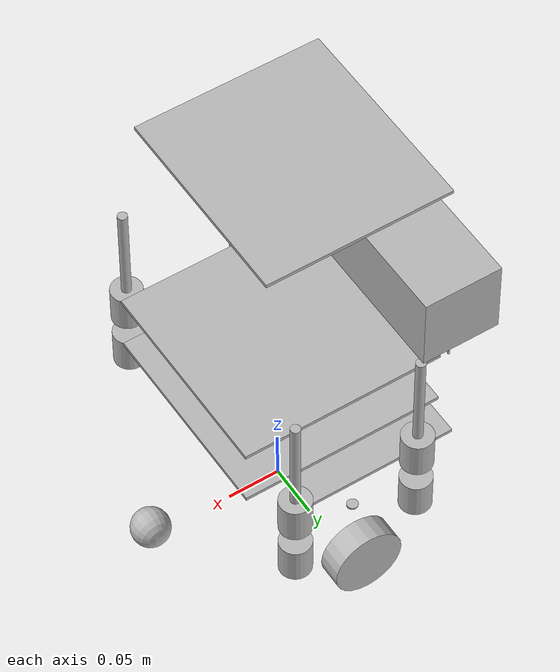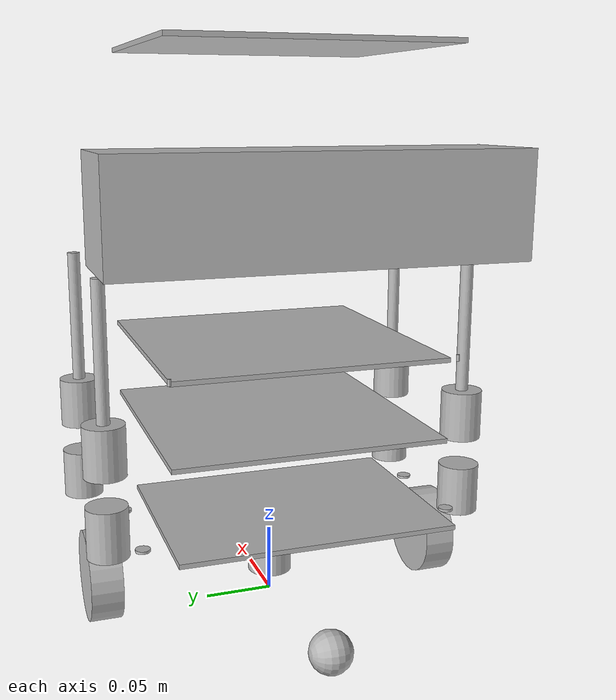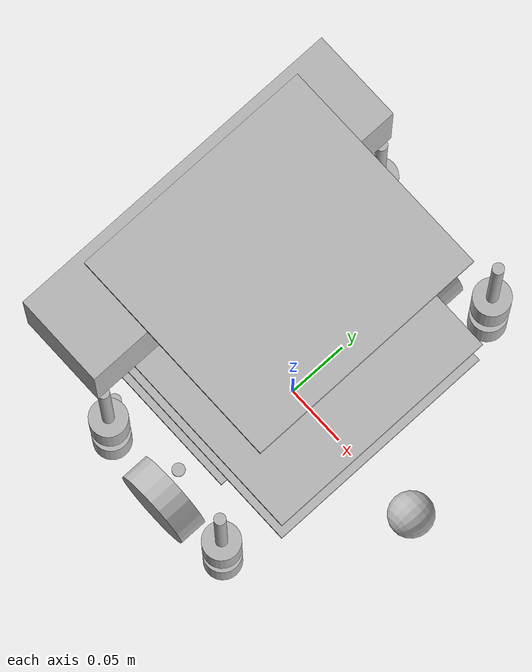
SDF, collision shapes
<sdf version="1.6">
 <model name="turtlebot">
  <link name="rack">
   <inertial>
    <pose>5e-06 -2e-06 0.000124 0 -0 0</pose>
    <inertia>
     <ixx>6.14575e-07</ixx>
     <ixy>0.000124</ixy>
     <ixz>0.000615</ixz>
     <iyy>6.14575e-07</iyy>
     <iyz>1.4e-05</iyz>
     <izz>2.47642e-07</izz>
    </inertia>
    <mass>0.300945</mass>
   </inertial>
   <sensor name="laser" type="ray">
    <pose>-0.065 0 0.092 0 -0 0</pose>
    <ray>
     <scan>
      <horizontal>
       <samples>180</samples>
       <resolution>1</resolution>
       <min_angle>-2.26893</min_angle>
       <max_angle>2.26893</max_angle>
      </horizontal>
      <vertical><samples>1</samples><min_angle>0</min_angle><max_angle>0</max_angle></vertical>
     </scan>
     <range><min>0.08</min><max>10</max><resolution>0.01</resolution></range>
    </ray>
    <update_rate>20</update_rate>
   </sensor>
   <visual name="plate_0_visual">
    <pose>-0.04334 0 0.084757 0 -0 0</pose>
    <geometry><mesh><uri>model://turtlebot/meshes/plate_0_logo.dae</uri></mesh></geometry>
    <material><shader type="pixel"/></material>
   </visual>
   <visual name="plate_1_visual">
    <pose>-0.00266 0 0.141907 0 -0 0</pose>
    <geometry><mesh><uri>model://turtlebot/meshes/plate_1_logo.dae</uri></mesh></geometry>
    <material><shader type="pixel"/></material>
   </visual>
   <visual name="plate_2_visual">
    <pose>-0.00266 0 0.199108 0 -0 0</pose>
    <geometry><mesh><uri>model://turtlebot/meshes/plate_1_logo.dae</uri></mesh></geometry>
    <material><shader type="pixel"/></material>
   </visual>
   <visual name="spacer_0_visual">
    <pose>-0.00254 0.111468 0.079992 0 -0 0</pose>
    <geometry><mesh><uri>model://turtlebot/meshes/68-02403-125_Spacer.dae</uri></mesh></geometry>
    <material><shader type="pixel"/></material>
   </visual>
   <visual name="plate_3_visual">
    <pose>-0.01582 0 0.405457 0 -0 0</pose>
    <geometry><mesh><uri>model://turtlebot/meshes/plate_2_logo.dae</uri></mesh></geometry>
    <material><shader type="pixel"/></material>
   </visual>
   <visual name="spacer_1_visual">
    <pose>-0.00254 -0.111468 0.079992 0 -0 0</pose>
    <geometry><mesh><uri>model://turtlebot/meshes/68-02403-125_Spacer.dae</uri></mesh></geometry>
    <material><shader type="pixel"/></material>
   </visual>
   <visual name="spacer_2_visual">
    <pose>-0.07239 -0.111468 0.079992 0 -0 0</pose>
    <geometry><mesh><uri>model://turtlebot/meshes/68-02403-125_Spacer.dae</uri></mesh></geometry>
    <material><shader type="pixel"/></material>
   </visual>
   <visual name="spacer_3_visual">
    <pose>-0.07239 0.111468 0.079992 0 -0 0</pose>
    <geometry><mesh><uri>model://turtlebot/meshes/68-02403-125_Spacer.dae</uri></mesh></geometry>
    <material><shader type="pixel"/></material>
   </visual>
   <visual name="standoff_2in_0_visual">
    <pose>0.06764 0.13142 0.08798 0 -0 0</pose>
    <geometry>
     <mesh><uri>model://turtlebot/meshes/68-04552-2000-RA_Turtlebot_M-F_Standoff.dae</uri></mesh>
    </geometry>
    <material><shader type="pixel"/></material>
   </visual>
   <visual name="standoff_2in_1_visual">
    <pose>0.06764 -0.13142 0.08798 0 -0 0</pose>
    <geometry>
     <mesh><uri>model://turtlebot/meshes/68-04552-2000-RA_Turtlebot_M-F_Standoff.dae</uri></mesh>
    </geometry>
    <material><shader type="pixel"/></material>
   </visual>
   <visual name="standoff_2in_2_visual">
    <pose>-0.052832 -0.13142 0.08798 0 -0 0</pose>
    <geometry>
     <mesh><uri>model://turtlebot/meshes/68-04552-2000-RA_Turtlebot_M-F_Standoff.dae</uri></mesh>
    </geometry>
    <material><shader type="pixel"/></material>
   </visual>
   <visual name="standoff_2in_3_visual">
    <pose>-0.052832 0.13142 0.08798 0 -0 0</pose>
    <geometry>
     <mesh><uri>model://turtlebot/meshes/68-04552-2000-RA_Turtlebot_M-F_Standoff.dae</uri></mesh>
    </geometry>
    <material><shader type="pixel"/></material>
   </visual>
   <visual name="standoff_2in_4_visual">
    <pose>0.06764 0.13142 0.14513 0 -0 0</pose>
    <geometry>
     <mesh><uri>model://turtlebot/meshes/68-04552-2000-RA_Turtlebot_M-F_Standoff.dae</uri></mesh>
    </geometry>
    <material><shader type="pixel"/></material>
   </visual>
   <visual name="standoff_2in_6_visual">
    <pose>-0.052832 -0.13142 0.14513 0 -0 0</pose>
    <geometry>
     <mesh><uri>model://turtlebot/meshes/68-04552-2000-RA_Turtlebot_M-F_Standoff.dae</uri></mesh>
    </geometry>
    <material><shader type="pixel"/></material>
   </visual>
   <visual name="standoff_2in_5_visual">
    <pose>0.06764 -0.13142 0.14513 0 -0 0</pose>
    <geometry>
     <mesh><uri>model://turtlebot/meshes/68-04552-2000-RA_Turtlebot_M-F_Standoff.dae</uri></mesh>
    </geometry>
    <material><shader type="pixel"/></material>
   </visual>
   <visual name="standoff_2in_7_visual">
    <pose>-0.052832 0.13142 0.14513 0 -0 0</pose>
    <geometry>
     <mesh><uri>model://turtlebot/meshes/68-04552-2000-RA_Turtlebot_M-F_Standoff.dae</uri></mesh>
    </geometry>
    <material><shader type="pixel"/></material>
   </visual>
   <visual name="standoff_8in_0_visual">
    <pose>0.06764 0.13142 0.20228 0 -0 0</pose>
    <geometry>
     <mesh><uri>model://turtlebot/meshes/68-02421-8000-RA_Turtlebot_F-F_Standoff.dae</uri></mesh>
    </geometry>
    <material><shader type="pixel"/></material>
   </visual>
   <visual name="standoff_8in_1_visual">
    <pose>0.06764 -0.13142 0.20228 0 -0 0</pose>
    <geometry>
     <mesh><uri>model://turtlebot/meshes/68-02421-8000-RA_Turtlebot_F-F_Standoff.dae</uri></mesh>
    </geometry>
    <material><shader type="pixel"/></material>
   </visual>
   <visual name="standoff_8in_2_visual">
    <pose>-0.052832 -0.13142 0.20228 0 -0 0</pose>
    <geometry>
     <mesh><uri>model://turtlebot/meshes/68-02421-8000-RA_Turtlebot_F-F_Standoff.dae</uri></mesh>
    </geometry>
    <material><shader type="pixel"/></material>
   </visual>
   <visual name="standoff_8in_3_visual">
    <pose>-0.052832 0.13142 0.20228 0 -0 0</pose>
    <geometry>
     <mesh><uri>model://turtlebot/meshes/68-02421-8000-RA_Turtlebot_F-F_Standoff.dae</uri></mesh>
    </geometry>
    <material><shader type="pixel"/></material>
   </visual>
   <visual name="standoff_kinect_0_visual">
    <pose>-0.105098 0.098 0.202308 0 -0 0</pose>
    <geometry><mesh><uri>model://turtlebot/meshes/68-04556-RA_Kinect_Standoff_Assy.dae</uri></mesh></geometry>
    <material><shader type="pixel"/></material>
   </visual>
   <visual name="standoff_kinect_1_visual">
    <pose>-0.105098 -0.098 0.202308 0 -0 0</pose>
    <geometry><mesh><uri>model://turtlebot/meshes/68-04556-RA_Kinect_Standoff_Assy.dae</uri></mesh></geometry>
    <material><shader type="pixel"/></material>
   </visual>
   <collision name="plate_0_collision">
    <pose>-0.04334 0 0.084757 0 -0 0</pose>
    <geometry><box><size>0.141727 0.192827 0.003299</size></box></geometry>
    <surface>
     <friction>
      <ode><mu>1</mu><mu2>1</mu2><fdir1>0 0 0</fdir1><slip1>0</slip1><slip2>0</slip2></ode>
      <torsional>
       <coefficient>1</coefficient>
       <patch_radius>0</patch_radius>
       <surface_radius>0</surface_radius>
       <use_patch_radius>1</use_patch_radius>
       <ode><slip>0</slip></ode>
      </torsional>
     </friction>
     <bounce><restitution_coefficient>0</restitution_coefficient><threshold>1e+06</threshold></bounce>
     <contact>
      <collide_without_contact>0</collide_without_contact>
      <collide_without_contact_bitmask>1</collide_without_contact_bitmask>
      <collide_bitmask>1</collide_bitmask>
      <ode>
       <soft_cfm>0</soft_cfm>
       <soft_erp>0.2</soft_erp>
       <kp>1e+13</kp>
       <kd>1</kd>
       <max_vel>0.01</max_vel>
       <min_depth>0</min_depth>
      </ode>
      <bullet>
       <split_impulse>1</split_impulse>
       <split_impulse_penetration_threshold>-0.01</split_impulse_penetration_threshold>
       <soft_cfm>0</soft_cfm>
       <soft_erp>0.2</soft_erp>
       <kp>1e+13</kp>
       <kd>1</kd>
      </bullet>
     </contact>
    </surface>
   </collision>
   <collision name="plate_1_collision">
    <pose>-0.00266 0 0.141907 0 -0 0</pose>
    <geometry><box><size>0.191105 0.192834 0.003299</size></box></geometry>
    <surface>
     <friction>
      <ode><mu>1</mu><mu2>1</mu2><fdir1>0 0 0</fdir1><slip1>0</slip1><slip2>0</slip2></ode>
      <torsional>
       <coefficient>1</coefficient>
       <patch_radius>0</patch_radius>
       <surface_radius>0</surface_radius>
       <use_patch_radius>1</use_patch_radius>
       <ode><slip>0</slip></ode>
      </torsional>
     </friction>
     <bounce><restitution_coefficient>0</restitution_coefficient><threshold>1e+06</threshold></bounce>
     <contact>
      <collide_without_contact>0</collide_without_contact>
      <collide_without_contact_bitmask>1</collide_without_contact_bitmask>
      <collide_bitmask>1</collide_bitmask>
      <ode>
       <soft_cfm>0</soft_cfm>
       <soft_erp>0.2</soft_erp>
       <kp>1e+13</kp>
       <kd>1</kd>
       <max_vel>0.01</max_vel>
       <min_depth>0</min_depth>
      </ode>
      <bullet>
       <split_impulse>1</split_impulse>
       <split_impulse_penetration_threshold>-0.01</split_impulse_penetration_threshold>
       <soft_cfm>0</soft_cfm>
       <soft_erp>0.2</soft_erp>
       <kp>1e+13</kp>
       <kd>1</kd>
      </bullet>
     </contact>
    </surface>
   </collision>
   <collision name="plate_2_collision">
    <pose>-0.00266 0 0.199108 0 -0 0</pose>
    <geometry><box><size>0.191105 0.192834 0.003299</size></box></geometry>
    <surface>
     <friction>
      <ode><mu>1</mu><mu2>1</mu2><fdir1>0 0 0</fdir1><slip1>0</slip1><slip2>0</slip2></ode>
      <torsional>
       <coefficient>1</coefficient>
       <patch_radius>0</patch_radius>
       <surface_radius>0</surface_radius>
       <use_patch_radius>1</use_patch_radius>
       <ode><slip>0</slip></ode>
      </torsional>
     </friction>
     <bounce><restitution_coefficient>0</restitution_coefficient><threshold>1e+06</threshold></bounce>
     <contact>
      <collide_without_contact>0</collide_without_contact>
      <collide_without_contact_bitmask>1</collide_without_contact_bitmask>
      <collide_bitmask>1</collide_bitmask>
      <ode>
       <soft_cfm>0</soft_cfm>
       <soft_erp>0.2</soft_erp>
       <kp>1e+13</kp>
       <kd>1</kd>
       <max_vel>0.01</max_vel>
       <min_depth>0</min_depth>
      </ode>
      <bullet>
       <split_impulse>1</split_impulse>
       <split_impulse_penetration_threshold>-0.01</split_impulse_penetration_threshold>
       <soft_cfm>0</soft_cfm>
       <soft_erp>0.2</soft_erp>
       <kp>1e+13</kp>
       <kd>1</kd>
      </bullet>
     </contact>
    </surface>
   </collision>
   <collision name="plate_3_collision">
    <pose>-0.01582 0 0.405457 0 -0 0</pose>
    <geometry><box><size>0.174804 0.192922 0.003299</size></box></geometry>
    <surface>
     <friction>
      <ode><mu>1</mu><mu2>1</mu2><fdir1>0 0 0</fdir1><slip1>0</slip1><slip2>0</slip2></ode>
      <torsional>
       <coefficient>1</coefficient>
       <patch_radius>0</patch_radius>
       <surface_radius>0</surface_radius>
       <use_patch_radius>1</use_patch_radius>
       <ode><slip>0</slip></ode>
      </torsional>
     </friction>
     <bounce><restitution_coefficient>0</restitution_coefficient><threshold>1e+06</threshold></bounce>
     <contact>
      <collide_without_contact>0</collide_without_contact>
      <collide_without_contact_bitmask>1</collide_without_contact_bitmask>
      <collide_bitmask>1</collide_bitmask>
      <ode>
       <soft_cfm>0</soft_cfm>
       <soft_erp>0.2</soft_erp>
       <kp>1e+13</kp>
       <kd>1</kd>
       <max_vel>0.01</max_vel>
       <min_depth>0</min_depth>
      </ode>
      <bullet>
       <split_impulse>1</split_impulse>
       <split_impulse_penetration_threshold>-0.01</split_impulse_penetration_threshold>
       <soft_cfm>0</soft_cfm>
       <soft_erp>0.2</soft_erp>
       <kp>1e+13</kp>
       <kd>1</kd>
      </bullet>
     </contact>
    </surface>
   </collision>
   <collision name="spacer_0_collision">
    <pose>-0.00254 0.111468 0.079992 0 -0 0</pose>
    <geometry><cylinder><radius>0.00511</radius><length>0.0018</length></cylinder></geometry>
    <surface>
     <friction>
      <ode><mu>1</mu><mu2>1</mu2><fdir1>0 0 0</fdir1><slip1>0</slip1><slip2>0</slip2></ode>
      <torsional>
       <coefficient>1</coefficient>
       <patch_radius>0</patch_radius>
       <surface_radius>0</surface_radius>
       <use_patch_radius>1</use_patch_radius>
       <ode><slip>0</slip></ode>
      </torsional>
     </friction>
     <bounce><restitution_coefficient>0</restitution_coefficient><threshold>1e+06</threshold></bounce>
     <contact>
      <collide_without_contact>0</collide_without_contact>
      <collide_without_contact_bitmask>1</collide_without_contact_bitmask>
      <collide_bitmask>1</collide_bitmask>
      <ode>
       <soft_cfm>0</soft_cfm>
       <soft_erp>0.2</soft_erp>
       <kp>1e+13</kp>
       <kd>1</kd>
       <max_vel>0.01</max_vel>
       <min_depth>0</min_depth>
      </ode>
      <bullet>
       <split_impulse>1</split_impulse>
       <split_impulse_penetration_threshold>-0.01</split_impulse_penetration_threshold>
       <soft_cfm>0</soft_cfm>
       <soft_erp>0.2</soft_erp>
       <kp>1e+13</kp>
       <kd>1</kd>
      </bullet>
     </contact>
    </surface>
   </collision>
   <collision name="spacer_1_collision">
    <pose>-0.00254 -0.111468 0.079992 0 -0 0</pose>
    <geometry><cylinder><radius>0.00511</radius><length>0.0018</length></cylinder></geometry>
    <surface>
     <friction>
      <ode><mu>1</mu><mu2>1</mu2><fdir1>0 0 0</fdir1><slip1>0</slip1><slip2>0</slip2></ode>
      <torsional>
       <coefficient>1</coefficient>
       <patch_radius>0</patch_radius>
       <surface_radius>0</surface_radius>
       <use_patch_radius>1</use_patch_radius>
       <ode><slip>0</slip></ode>
      </torsional>
     </friction>
     <bounce><restitution_coefficient>0</restitution_coefficient><threshold>1e+06</threshold></bounce>
     <contact>
      <collide_without_contact>0</collide_without_contact>
      <collide_without_contact_bitmask>1</collide_without_contact_bitmask>
      <collide_bitmask>1</collide_bitmask>
      <ode>
       <soft_cfm>0</soft_cfm>
       <soft_erp>0.2</soft_erp>
       <kp>1e+13</kp>
       <kd>1</kd>
       <max_vel>0.01</max_vel>
       <min_depth>0</min_depth>
      </ode>
      <bullet>
       <split_impulse>1</split_impulse>
       <split_impulse_penetration_threshold>-0.01</split_impulse_penetration_threshold>
       <soft_cfm>0</soft_cfm>
       <soft_erp>0.2</soft_erp>
       <kp>1e+13</kp>
       <kd>1</kd>
      </bullet>
     </contact>
    </surface>
   </collision>
   <collision name="spacer_2_collision">
    <pose>-0.07239 -0.111468 0.079992 0 -0 0</pose>
    <geometry><cylinder><radius>0.00511</radius><length>0.0018</length></cylinder></geometry>
    <surface>
     <friction>
      <ode><mu>1</mu><mu2>1</mu2><fdir1>0 0 0</fdir1><slip1>0</slip1><slip2>0</slip2></ode>
      <torsional>
       <coefficient>1</coefficient>
       <patch_radius>0</patch_radius>
       <surface_radius>0</surface_radius>
       <use_patch_radius>1</use_patch_radius>
       <ode><slip>0</slip></ode>
      </torsional>
     </friction>
     <bounce><restitution_coefficient>0</restitution_coefficient><threshold>1e+06</threshold></bounce>
     <contact>
      <collide_without_contact>0</collide_without_contact>
      <collide_without_contact_bitmask>1</collide_without_contact_bitmask>
      <collide_bitmask>1</collide_bitmask>
      <ode>
       <soft_cfm>0</soft_cfm>
       <soft_erp>0.2</soft_erp>
       <kp>1e+13</kp>
       <kd>1</kd>
       <max_vel>0.01</max_vel>
       <min_depth>0</min_depth>
      </ode>
      <bullet>
       <split_impulse>1</split_impulse>
       <split_impulse_penetration_threshold>-0.01</split_impulse_penetration_threshold>
       <soft_cfm>0</soft_cfm>
       <soft_erp>0.2</soft_erp>
       <kp>1e+13</kp>
       <kd>1</kd>
      </bullet>
     </contact>
    </surface>
   </collision>
   <collision name="standoff_2in_0_collision">
    <pose>0.06764 0.13142 0.08798 0 -0 0</pose>
    <geometry><cylinder><radius>0.014635</radius><length>0.036003</length></cylinder></geometry>
    <surface>
     <friction>
      <ode><mu>1</mu><mu2>1</mu2><fdir1>0 0 0</fdir1><slip1>0</slip1><slip2>0</slip2></ode>
      <torsional>
       <coefficient>1</coefficient>
       <patch_radius>0</patch_radius>
       <surface_radius>0</surface_radius>
       <use_patch_radius>1</use_patch_radius>
       <ode><slip>0</slip></ode>
      </torsional>
     </friction>
     <bounce><restitution_coefficient>0</restitution_coefficient><threshold>1e+06</threshold></bounce>
     <contact>
      <collide_without_contact>0</collide_without_contact>
      <collide_without_contact_bitmask>1</collide_without_contact_bitmask>
      <collide_bitmask>1</collide_bitmask>
      <ode>
       <soft_cfm>0</soft_cfm>
       <soft_erp>0.2</soft_erp>
       <kp>1e+13</kp>
       <kd>1</kd>
       <max_vel>0.01</max_vel>
       <min_depth>0</min_depth>
      </ode>
      <bullet>
       <split_impulse>1</split_impulse>
       <split_impulse_penetration_threshold>-0.01</split_impulse_penetration_threshold>
       <soft_cfm>0</soft_cfm>
       <soft_erp>0.2</soft_erp>
       <kp>1e+13</kp>
       <kd>1</kd>
      </bullet>
     </contact>
    </surface>
   </collision>
   <collision name="spacer_3_collision">
    <pose>-0.07239 0.111468 0.079992 0 -0 0</pose>
    <geometry><cylinder><radius>0.00511</radius><length>0.0018</length></cylinder></geometry>
    <surface>
     <friction>
      <ode><mu>1</mu><mu2>1</mu2><fdir1>0 0 0</fdir1><slip1>0</slip1><slip2>0</slip2></ode>
      <torsional>
       <coefficient>1</coefficient>
       <patch_radius>0</patch_radius>
       <surface_radius>0</surface_radius>
       <use_patch_radius>1</use_patch_radius>
       <ode><slip>0</slip></ode>
      </torsional>
     </friction>
     <bounce><restitution_coefficient>0</restitution_coefficient><threshold>1e+06</threshold></bounce>
     <contact>
      <collide_without_contact>0</collide_without_contact>
      <collide_without_contact_bitmask>1</collide_without_contact_bitmask>
      <collide_bitmask>1</collide_bitmask>
      <ode>
       <soft_cfm>0</soft_cfm>
       <soft_erp>0.2</soft_erp>
       <kp>1e+13</kp>
       <kd>1</kd>
       <max_vel>0.01</max_vel>
       <min_depth>0</min_depth>
      </ode>
      <bullet>
       <split_impulse>1</split_impulse>
       <split_impulse_penetration_threshold>-0.01</split_impulse_penetration_threshold>
       <soft_cfm>0</soft_cfm>
       <soft_erp>0.2</soft_erp>
       <kp>1e+13</kp>
       <kd>1</kd>
      </bullet>
     </contact>
    </surface>
   </collision>
   <collision name="standoff_2in_1_collision">
    <pose>0.06764 -0.13142 0.08798 0 -0 0</pose>
    <geometry><cylinder><radius>0.014635</radius><length>0.036003</length></cylinder></geometry>
    <surface>
     <friction>
      <ode><mu>1</mu><mu2>1</mu2><fdir1>0 0 0</fdir1><slip1>0</slip1><slip2>0</slip2></ode>
      <torsional>
       <coefficient>1</coefficient>
       <patch_radius>0</patch_radius>
       <surface_radius>0</surface_radius>
       <use_patch_radius>1</use_patch_radius>
       <ode><slip>0</slip></ode>
      </torsional>
     </friction>
     <bounce><restitution_coefficient>0</restitution_coefficient><threshold>1e+06</threshold></bounce>
     <contact>
      <collide_without_contact>0</collide_without_contact>
      <collide_without_contact_bitmask>1</collide_without_contact_bitmask>
      <collide_bitmask>1</collide_bitmask>
      <ode>
       <soft_cfm>0</soft_cfm>
       <soft_erp>0.2</soft_erp>
       <kp>1e+13</kp>
       <kd>1</kd>
       <max_vel>0.01</max_vel>
       <min_depth>0</min_depth>
      </ode>
      <bullet>
       <split_impulse>1</split_impulse>
       <split_impulse_penetration_threshold>-0.01</split_impulse_penetration_threshold>
       <soft_cfm>0</soft_cfm>
       <soft_erp>0.2</soft_erp>
       <kp>1e+13</kp>
       <kd>1</kd>
      </bullet>
     </contact>
    </surface>
   </collision>
   <collision name="standoff_2in_3_collision">
    <pose>-0.052832 0.13142 0.08798 0 -0 0</pose>
    <geometry><cylinder><radius>0.014635</radius><length>0.036003</length></cylinder></geometry>
    <surface>
     <friction>
      <ode><mu>1</mu><mu2>1</mu2><fdir1>0 0 0</fdir1><slip1>0</slip1><slip2>0</slip2></ode>
      <torsional>
       <coefficient>1</coefficient>
       <patch_radius>0</patch_radius>
       <surface_radius>0</surface_radius>
       <use_patch_radius>1</use_patch_radius>
       <ode><slip>0</slip></ode>
      </torsional>
     </friction>
     <bounce><restitution_coefficient>0</restitution_coefficient><threshold>1e+06</threshold></bounce>
     <contact>
      <collide_without_contact>0</collide_without_contact>
      <collide_without_contact_bitmask>1</collide_without_contact_bitmask>
      <collide_bitmask>1</collide_bitmask>
      <ode>
       <soft_cfm>0</soft_cfm>
       <soft_erp>0.2</soft_erp>
       <kp>1e+13</kp>
       <kd>1</kd>
       <max_vel>0.01</max_vel>
       <min_depth>0</min_depth>
      </ode>
      <bullet>
       <split_impulse>1</split_impulse>
       <split_impulse_penetration_threshold>-0.01</split_impulse_penetration_threshold>
       <soft_cfm>0</soft_cfm>
       <soft_erp>0.2</soft_erp>
       <kp>1e+13</kp>
       <kd>1</kd>
      </bullet>
     </contact>
    </surface>
   </collision>
   <collision name="standoff_2in_2_collision">
    <pose>-0.052832 -0.13142 0.08798 0 -0 0</pose>
    <geometry><cylinder><radius>0.014635</radius><length>0.036003</length></cylinder></geometry>
    <surface>
     <friction>
      <ode><mu>1</mu><mu2>1</mu2><fdir1>0 0 0</fdir1><slip1>0</slip1><slip2>0</slip2></ode>
      <torsional>
       <coefficient>1</coefficient>
       <patch_radius>0</patch_radius>
       <surface_radius>0</surface_radius>
       <use_patch_radius>1</use_patch_radius>
       <ode><slip>0</slip></ode>
      </torsional>
     </friction>
     <bounce><restitution_coefficient>0</restitution_coefficient><threshold>1e+06</threshold></bounce>
     <contact>
      <collide_without_contact>0</collide_without_contact>
      <collide_without_contact_bitmask>1</collide_without_contact_bitmask>
      <collide_bitmask>1</collide_bitmask>
      <ode>
       <soft_cfm>0</soft_cfm>
       <soft_erp>0.2</soft_erp>
       <kp>1e+13</kp>
       <kd>1</kd>
       <max_vel>0.01</max_vel>
       <min_depth>0</min_depth>
      </ode>
      <bullet>
       <split_impulse>1</split_impulse>
       <split_impulse_penetration_threshold>-0.01</split_impulse_penetration_threshold>
       <soft_cfm>0</soft_cfm>
       <soft_erp>0.2</soft_erp>
       <kp>1e+13</kp>
       <kd>1</kd>
      </bullet>
     </contact>
    </surface>
   </collision>
   <collision name="standoff_2in_4_collision">
    <pose>0.06764 0.13142 0.14513 0 -0 0</pose>
    <geometry><cylinder><radius>0.014635</radius><length>0.036003</length></cylinder></geometry>
    <surface>
     <friction>
      <ode><mu>1</mu><mu2>1</mu2><fdir1>0 0 0</fdir1><slip1>0</slip1><slip2>0</slip2></ode>
      <torsional>
       <coefficient>1</coefficient>
       <patch_radius>0</patch_radius>
       <surface_radius>0</surface_radius>
       <use_patch_radius>1</use_patch_radius>
       <ode><slip>0</slip></ode>
      </torsional>
     </friction>
     <bounce><restitution_coefficient>0</restitution_coefficient><threshold>1e+06</threshold></bounce>
     <contact>
      <collide_without_contact>0</collide_without_contact>
      <collide_without_contact_bitmask>1</collide_without_contact_bitmask>
      <collide_bitmask>1</collide_bitmask>
      <ode>
       <soft_cfm>0</soft_cfm>
       <soft_erp>0.2</soft_erp>
       <kp>1e+13</kp>
       <kd>1</kd>
       <max_vel>0.01</max_vel>
       <min_depth>0</min_depth>
      </ode>
      <bullet>
       <split_impulse>1</split_impulse>
       <split_impulse_penetration_threshold>-0.01</split_impulse_penetration_threshold>
       <soft_cfm>0</soft_cfm>
       <soft_erp>0.2</soft_erp>
       <kp>1e+13</kp>
       <kd>1</kd>
      </bullet>
     </contact>
    </surface>
   </collision>
   <collision name="standoff_2in_5_collision">
    <pose>0.06764 -0.13142 0.14513 0 -0 0</pose>
    <geometry><cylinder><radius>0.014635</radius><length>0.036003</length></cylinder></geometry>
    <surface>
     <friction>
      <ode><mu>1</mu><mu2>1</mu2><fdir1>0 0 0</fdir1><slip1>0</slip1><slip2>0</slip2></ode>
      <torsional>
       <coefficient>1</coefficient>
       <patch_radius>0</patch_radius>
       <surface_radius>0</surface_radius>
       <use_patch_radius>1</use_patch_radius>
       <ode><slip>0</slip></ode>
      </torsional>
     </friction>
     <bounce><restitution_coefficient>0</restitution_coefficient><threshold>1e+06</threshold></bounce>
     <contact>
      <collide_without_contact>0</collide_without_contact>
      <collide_without_contact_bitmask>1</collide_without_contact_bitmask>
      <collide_bitmask>1</collide_bitmask>
      <ode>
       <soft_cfm>0</soft_cfm>
       <soft_erp>0.2</soft_erp>
       <kp>1e+13</kp>
       <kd>1</kd>
       <max_vel>0.01</max_vel>
       <min_depth>0</min_depth>
      </ode>
      <bullet>
       <split_impulse>1</split_impulse>
       <split_impulse_penetration_threshold>-0.01</split_impulse_penetration_threshold>
       <soft_cfm>0</soft_cfm>
       <soft_erp>0.2</soft_erp>
       <kp>1e+13</kp>
       <kd>1</kd>
      </bullet>
     </contact>
    </surface>
   </collision>
   <collision name="standoff_2in_6_collision">
    <pose>-0.052832 -0.13142 0.14513 0 -0 0</pose>
    <geometry><cylinder><radius>0.014635</radius><length>0.036003</length></cylinder></geometry>
    <surface>
     <friction>
      <ode><mu>1</mu><mu2>1</mu2><fdir1>0 0 0</fdir1><slip1>0</slip1><slip2>0</slip2></ode>
      <torsional>
       <coefficient>1</coefficient>
       <patch_radius>0</patch_radius>
       <surface_radius>0</surface_radius>
       <use_patch_radius>1</use_patch_radius>
       <ode><slip>0</slip></ode>
      </torsional>
     </friction>
     <bounce><restitution_coefficient>0</restitution_coefficient><threshold>1e+06</threshold></bounce>
     <contact>
      <collide_without_contact>0</collide_without_contact>
      <collide_without_contact_bitmask>1</collide_without_contact_bitmask>
      <collide_bitmask>1</collide_bitmask>
      <ode>
       <soft_cfm>0</soft_cfm>
       <soft_erp>0.2</soft_erp>
       <kp>1e+13</kp>
       <kd>1</kd>
       <max_vel>0.01</max_vel>
       <min_depth>0</min_depth>
      </ode>
      <bullet>
       <split_impulse>1</split_impulse>
       <split_impulse_penetration_threshold>-0.01</split_impulse_penetration_threshold>
       <soft_cfm>0</soft_cfm>
       <soft_erp>0.2</soft_erp>
       <kp>1e+13</kp>
       <kd>1</kd>
      </bullet>
     </contact>
    </surface>
   </collision>
   <collision name="standoff_8in_0_collision">
    <pose>0.06764 0.13142 0.20228 0 -0 0</pose>
    <geometry><cylinder><radius>0.004517</radius><length>0.11521</length></cylinder></geometry>
    <surface>
     <friction>
      <ode><mu>1</mu><mu2>1</mu2><fdir1>0 0 0</fdir1><slip1>0</slip1><slip2>0</slip2></ode>
      <torsional>
       <coefficient>1</coefficient>
       <patch_radius>0</patch_radius>
       <surface_radius>0</surface_radius>
       <use_patch_radius>1</use_patch_radius>
       <ode><slip>0</slip></ode>
      </torsional>
     </friction>
     <bounce><restitution_coefficient>0</restitution_coefficient><threshold>1e+06</threshold></bounce>
     <contact>
      <collide_without_contact>0</collide_without_contact>
      <collide_without_contact_bitmask>1</collide_without_contact_bitmask>
      <collide_bitmask>1</collide_bitmask>
      <ode>
       <soft_cfm>0</soft_cfm>
       <soft_erp>0.2</soft_erp>
       <kp>1e+13</kp>
       <kd>1</kd>
       <max_vel>0.01</max_vel>
       <min_depth>0</min_depth>
      </ode>
      <bullet>
       <split_impulse>1</split_impulse>
       <split_impulse_penetration_threshold>-0.01</split_impulse_penetration_threshold>
       <soft_cfm>0</soft_cfm>
       <soft_erp>0.2</soft_erp>
       <kp>1e+13</kp>
       <kd>1</kd>
      </bullet>
     </contact>
    </surface>
   </collision>
   <collision name="standoff_2in_7_collision">
    <pose>-0.052832 0.13142 0.14513 0 -0 0</pose>
    <geometry><cylinder><radius>0.014635</radius><length>0.036003</length></cylinder></geometry>
    <surface>
     <friction>
      <ode><mu>1</mu><mu2>1</mu2><fdir1>0 0 0</fdir1><slip1>0</slip1><slip2>0</slip2></ode>
      <torsional>
       <coefficient>1</coefficient>
       <patch_radius>0</patch_radius>
       <surface_radius>0</surface_radius>
       <use_patch_radius>1</use_patch_radius>
       <ode><slip>0</slip></ode>
      </torsional>
     </friction>
     <bounce><restitution_coefficient>0</restitution_coefficient><threshold>1e+06</threshold></bounce>
     <contact>
      <collide_without_contact>0</collide_without_contact>
      <collide_without_contact_bitmask>1</collide_without_contact_bitmask>
      <collide_bitmask>1</collide_bitmask>
      <ode>
       <soft_cfm>0</soft_cfm>
       <soft_erp>0.2</soft_erp>
       <kp>1e+13</kp>
       <kd>1</kd>
       <max_vel>0.01</max_vel>
       <min_depth>0</min_depth>
      </ode>
      <bullet>
       <split_impulse>1</split_impulse>
       <split_impulse_penetration_threshold>-0.01</split_impulse_penetration_threshold>
       <soft_cfm>0</soft_cfm>
       <soft_erp>0.2</soft_erp>
       <kp>1e+13</kp>
       <kd>1</kd>
      </bullet>
     </contact>
    </surface>
   </collision>
   <collision name="standoff_8in_1_collision">
    <pose>0.06764 -0.13142 0.20228 0 -0 0</pose>
    <geometry><cylinder><radius>0.004517</radius><length>0.11521</length></cylinder></geometry>
    <surface>
     <friction>
      <ode><mu>1</mu><mu2>1</mu2><fdir1>0 0 0</fdir1><slip1>0</slip1><slip2>0</slip2></ode>
      <torsional>
       <coefficient>1</coefficient>
       <patch_radius>0</patch_radius>
       <surface_radius>0</surface_radius>
       <use_patch_radius>1</use_patch_radius>
       <ode><slip>0</slip></ode>
      </torsional>
     </friction>
     <bounce><restitution_coefficient>0</restitution_coefficient><threshold>1e+06</threshold></bounce>
     <contact>
      <collide_without_contact>0</collide_without_contact>
      <collide_without_contact_bitmask>1</collide_without_contact_bitmask>
      <collide_bitmask>1</collide_bitmask>
      <ode>
       <soft_cfm>0</soft_cfm>
       <soft_erp>0.2</soft_erp>
       <kp>1e+13</kp>
       <kd>1</kd>
       <max_vel>0.01</max_vel>
       <min_depth>0</min_depth>
      </ode>
      <bullet>
       <split_impulse>1</split_impulse>
       <split_impulse_penetration_threshold>-0.01</split_impulse_penetration_threshold>
       <soft_cfm>0</soft_cfm>
       <soft_erp>0.2</soft_erp>
       <kp>1e+13</kp>
       <kd>1</kd>
      </bullet>
     </contact>
    </surface>
   </collision>
   <collision name="standoff_8in_2_collision">
    <pose>-0.052832 -0.13142 0.20228 0 -0 0</pose>
    <geometry><cylinder><radius>0.004517</radius><length>0.11521</length></cylinder></geometry>
    <surface>
     <friction>
      <ode><mu>1</mu><mu2>1</mu2><fdir1>0 0 0</fdir1><slip1>0</slip1><slip2>0</slip2></ode>
      <torsional>
       <coefficient>1</coefficient>
       <patch_radius>0</patch_radius>
       <surface_radius>0</surface_radius>
       <use_patch_radius>1</use_patch_radius>
       <ode><slip>0</slip></ode>
      </torsional>
     </friction>
     <bounce><restitution_coefficient>0</restitution_coefficient><threshold>1e+06</threshold></bounce>
     <contact>
      <collide_without_contact>0</collide_without_contact>
      <collide_without_contact_bitmask>1</collide_without_contact_bitmask>
      <collide_bitmask>1</collide_bitmask>
      <ode>
       <soft_cfm>0</soft_cfm>
       <soft_erp>0.2</soft_erp>
       <kp>1e+13</kp>
       <kd>1</kd>
       <max_vel>0.01</max_vel>
       <min_depth>0</min_depth>
      </ode>
      <bullet>
       <split_impulse>1</split_impulse>
       <split_impulse_penetration_threshold>-0.01</split_impulse_penetration_threshold>
       <soft_cfm>0</soft_cfm>
       <soft_erp>0.2</soft_erp>
       <kp>1e+13</kp>
       <kd>1</kd>
      </bullet>
     </contact>
    </surface>
   </collision>
   <collision name="standoff_8in_3_collision">
    <pose>-0.052832 0.13142 0.20228 0 -0 0</pose>
    <geometry><cylinder><radius>0.004517</radius><length>0.11521</length></cylinder></geometry>
    <surface>
     <friction>
      <ode><mu>1</mu><mu2>1</mu2><fdir1>0 0 0</fdir1><slip1>0</slip1><slip2>0</slip2></ode>
      <torsional>
       <coefficient>1</coefficient>
       <patch_radius>0</patch_radius>
       <surface_radius>0</surface_radius>
       <use_patch_radius>1</use_patch_radius>
       <ode><slip>0</slip></ode>
      </torsional>
     </friction>
     <bounce><restitution_coefficient>0</restitution_coefficient><threshold>1e+06</threshold></bounce>
     <contact>
      <collide_without_contact>0</collide_without_contact>
      <collide_without_contact_bitmask>1</collide_without_contact_bitmask>
      <collide_bitmask>1</collide_bitmask>
      <ode>
       <soft_cfm>0</soft_cfm>
       <soft_erp>0.2</soft_erp>
       <kp>1e+13</kp>
       <kd>1</kd>
       <max_vel>0.01</max_vel>
       <min_depth>0</min_depth>
      </ode>
      <bullet>
       <split_impulse>1</split_impulse>
       <split_impulse_penetration_threshold>-0.01</split_impulse_penetration_threshold>
       <soft_cfm>0</soft_cfm>
       <soft_erp>0.2</soft_erp>
       <kp>1e+13</kp>
       <kd>1</kd>
      </bullet>
     </contact>
    </surface>
   </collision>
   <collision name="standoff_kinect_0_collision">
    <pose>-0.105098 0.098 0.202308 0 -0 0</pose>
    <geometry><cylinder><radius>0.001111</radius><length>0.004424</length></cylinder></geometry>
    <surface>
     <friction>
      <ode><mu>1</mu><mu2>1</mu2><fdir1>0 0 0</fdir1><slip1>0</slip1><slip2>0</slip2></ode>
      <torsional>
       <coefficient>1</coefficient>
       <patch_radius>0</patch_radius>
       <surface_radius>0</surface_radius>
       <use_patch_radius>1</use_patch_radius>
       <ode><slip>0</slip></ode>
      </torsional>
     </friction>
     <bounce><restitution_coefficient>0</restitution_coefficient><threshold>1e+06</threshold></bounce>
     <contact>
      <collide_without_contact>0</collide_without_contact>
      <collide_without_contact_bitmask>1</collide_without_contact_bitmask>
      <collide_bitmask>1</collide_bitmask>
      <ode>
       <soft_cfm>0</soft_cfm>
       <soft_erp>0.2</soft_erp>
       <kp>1e+13</kp>
       <kd>1</kd>
       <max_vel>0.01</max_vel>
       <min_depth>0</min_depth>
      </ode>
      <bullet>
       <split_impulse>1</split_impulse>
       <split_impulse_penetration_threshold>-0.01</split_impulse_penetration_threshold>
       <soft_cfm>0</soft_cfm>
       <soft_erp>0.2</soft_erp>
       <kp>1e+13</kp>
       <kd>1</kd>
      </bullet>
     </contact>
    </surface>
   </collision>
   <collision name="standoff_kinect_1_collision">
    <pose>-0.105098 -0.098 0.202308 0 -0 0</pose>
    <geometry><cylinder><radius>0.001111</radius><length>0.004424</length></cylinder></geometry>
    <surface>
     <friction>
      <ode><mu>1</mu><mu2>1</mu2><fdir1>0 0 0</fdir1><slip1>0</slip1><slip2>0</slip2></ode>
      <torsional>
       <coefficient>1</coefficient>
       <patch_radius>0</patch_radius>
       <surface_radius>0</surface_radius>
       <use_patch_radius>1</use_patch_radius>
       <ode><slip>0</slip></ode>
      </torsional>
     </friction>
     <bounce><restitution_coefficient>0</restitution_coefficient><threshold>1e+06</threshold></bounce>
     <contact>
      <collide_without_contact>0</collide_without_contact>
      <collide_without_contact_bitmask>1</collide_without_contact_bitmask>
      <collide_bitmask>1</collide_bitmask>
      <ode>
       <soft_cfm>0</soft_cfm>
       <soft_erp>0.2</soft_erp>
       <kp>1e+13</kp>
       <kd>1</kd>
       <max_vel>0.01</max_vel>
       <min_depth>0</min_depth>
      </ode>
      <bullet>
       <split_impulse>1</split_impulse>
       <split_impulse_penetration_threshold>-0.01</split_impulse_penetration_threshold>
       <soft_cfm>0</soft_cfm>
       <soft_erp>0.2</soft_erp>
       <kp>1e+13</kp>
       <kd>1</kd>
      </bullet>
     </contact>
    </surface>
   </collision>
  </link>
  <link name="create::base">
   <inertial>
    <pose>0.001453 -0.000453 0.029787 0 -0 0</pose>
    <inertia>
     <ixx>0.05864</ixx>
     <ixy>0.000124</ixy>
     <ixz>0.000615</ixz>
     <iyy>0.058786</iyy>
     <iyz>1.4e-05</iyz>
     <izz>1.53244</izz>
    </inertia>
    <mass>2.234</mass>
   </inertial>
   <sensor name="left_cliff_sensor" type="ray">
    <pose>0.07 0.14 0.027 0 1.57079 0</pose>
    <ray>
     <scan>
      <horizontal>
       <samples>1</samples>
       <resolution>1</resolution>
       <min_angle>0</min_angle>
       <max_angle>0</max_angle>
      </horizontal>
      <vertical><samples>1</samples><min_angle>0</min_angle><max_angle>0</max_angle></vertical>
     </scan>
     <range><min>0.01</min><max>0.04</max><resolution>0.1</resolution></range>
    </ray>
   </sensor>
   <sensor name="leftfront_cliff_sensor" type="ray">
    <pose>0.15 0.04 0.027 0 1.57079 0</pose>
    <ray>
     <scan>
      <horizontal>
       <samples>1</samples>
       <resolution>1</resolution>
       <min_angle>0</min_angle>
       <max_angle>0</max_angle>
      </horizontal>
      <vertical><samples>1</samples><min_angle>0</min_angle><max_angle>0</max_angle></vertical>
     </scan>
     <range><min>0.01</min><max>0.04</max><resolution>0.1</resolution></range>
    </ray>
   </sensor>
   <sensor name="right_cliff_sensor" type="ray">
    <pose>0.07 -0.14 0.027 0 1.57079 0</pose>
    <ray>
     <scan>
      <horizontal>
       <samples>1</samples>
       <resolution>1</resolution>
       <min_angle>0</min_angle>
       <max_angle>0</max_angle>
      </horizontal>
      <vertical><samples>1</samples><min_angle>0</min_angle><max_angle>0</max_angle></vertical>
     </scan>
     <range><min>0.01</min><max>0.04</max><resolution>0.1</resolution></range>
    </ray>
   </sensor>
   <sensor name="rightfront_cliff_sensor" type="ray">
    <pose>0.15 -0.04 0.027 0 1.57079 0</pose>
    <ray>
     <scan>
      <horizontal>
       <samples>1</samples>
       <resolution>1</resolution>
       <min_angle>0</min_angle>
       <max_angle>0</max_angle>
      </horizontal>
      <vertical><samples>1</samples><min_angle>0</min_angle><max_angle>0</max_angle></vertical>
     </scan>
     <range><min>0.01</min><max>0.04</max><resolution>0.1</resolution></range>
    </ray>
   </sensor>
   <sensor name="wall_sensor" type="ray">
    <pose>0.09 -0.12 0.059 0 0 -1</pose>
    <ray>
     <scan>
      <horizontal>
       <samples>1</samples>
       <resolution>1</resolution>
       <min_angle>0</min_angle>
       <max_angle>0</max_angle>
      </horizontal>
      <vertical><samples>1</samples><min_angle>0</min_angle><max_angle>0</max_angle></vertical>
     </scan>
     <range><min>0.016</min><max>0.04</max><resolution>0.1</resolution></range>
    </ray>
   </sensor>
   <visual name="base_visual">
    <pose>0 0 0.0478 0 -0 0</pose>
    <geometry><mesh><uri>model://create/meshes/create_body.dae</uri></mesh></geometry>
    <material><shader type="pixel"/></material>
   </visual>
   <visual name="front_wheel_visual">
    <pose>0.13 0 0.017 4.8e-05 1.5707 1.57075</pose>
    <geometry><sphere><radius>0.009</radius></sphere></geometry>
    <material><shader type="pixel"/></material>
   </visual>
   <visual name="rear_wheel_visual">
    <pose>-0.13 0 0.017 4.8e-05 1.5707 1.57075</pose>
    <geometry><sphere><radius>0.0075</radius></sphere></geometry>
    <material><shader type="pixel"/></material>
   </visual>
   <collision name="base_collision">
    <pose>0 0 0.0478 0 -0 0</pose>
    <geometry><cylinder><radius>0.016495</radius><length>0.061163</length></cylinder></geometry>
    <surface>
     <friction>
      <ode><mu>1</mu><mu2>1</mu2><fdir1>0 0 0</fdir1><slip1>0</slip1><slip2>0</slip2></ode>
      <torsional>
       <coefficient>1</coefficient>
       <patch_radius>0</patch_radius>
       <surface_radius>0</surface_radius>
       <use_patch_radius>1</use_patch_radius>
       <ode><slip>0</slip></ode>
      </torsional>
     </friction>
     <bounce><restitution_coefficient>0</restitution_coefficient><threshold>1e+06</threshold></bounce>
     <contact>
      <collide_without_contact>0</collide_without_contact>
      <collide_without_contact_bitmask>1</collide_without_contact_bitmask>
      <collide_bitmask>1</collide_bitmask>
      <ode>
       <soft_cfm>0</soft_cfm>
       <soft_erp>0.2</soft_erp>
       <kp>1e+13</kp>
       <kd>1</kd>
       <max_vel>0.01</max_vel>
       <min_depth>0</min_depth>
      </ode>
      <bullet>
       <split_impulse>1</split_impulse>
       <split_impulse_penetration_threshold>-0.01</split_impulse_penetration_threshold>
       <soft_cfm>0</soft_cfm>
       <soft_erp>0.2</soft_erp>
       <kp>1e+13</kp>
       <kd>1</kd>
      </bullet>
     </contact>
    </surface>
   </collision>
   <collision name="front_wheel_collision">
    <pose>0.13 0 0.017 -0 1.5707 1.5707</pose>
    <geometry><sphere><radius>0.018</radius></sphere></geometry>
    <surface>
     <friction>
      <ode><mu>0</mu><mu2>0</mu2><fdir1>0 0 0</fdir1><slip1>0</slip1><slip2>0</slip2></ode>
      <torsional>
       <coefficient>1</coefficient>
       <patch_radius>0</patch_radius>
       <surface_radius>0</surface_radius>
       <use_patch_radius>1</use_patch_radius>
       <ode><slip>0</slip></ode>
      </torsional>
     </friction>
     <bounce><restitution_coefficient>0</restitution_coefficient><threshold>1e+06</threshold></bounce>
     <contact>
      <collide_without_contact>0</collide_without_contact>
      <collide_without_contact_bitmask>1</collide_without_contact_bitmask>
      <collide_bitmask>1</collide_bitmask>
      <ode>
       <soft_cfm>0</soft_cfm>
       <soft_erp>0.2</soft_erp>
       <kp>1e+13</kp>
       <kd>1</kd>
       <max_vel>0.01</max_vel>
       <min_depth>0</min_depth>
      </ode>
      <bullet>
       <split_impulse>1</split_impulse>
       <split_impulse_penetration_threshold>-0.01</split_impulse_penetration_threshold>
       <soft_cfm>0</soft_cfm>
       <soft_erp>0.2</soft_erp>
       <kp>1e+13</kp>
       <kd>1</kd>
      </bullet>
     </contact>
    </surface>
   </collision>
   <collision name="rear_wheel_collision">
    <pose>-0.13 0 0.017 -0 1.5707 1.5707</pose>
    <geometry><sphere><radius>0.015</radius></sphere></geometry>
    <surface>
     <friction>
      <ode><mu>0</mu><mu2>0</mu2><fdir1>0 0 0</fdir1><slip1>0</slip1><slip2>0</slip2></ode>
      <torsional>
       <coefficient>1</coefficient>
       <patch_radius>0</patch_radius>
       <surface_radius>0</surface_radius>
       <use_patch_radius>1</use_patch_radius>
       <ode><slip>0</slip></ode>
      </torsional>
     </friction>
     <bounce><restitution_coefficient>0</restitution_coefficient><threshold>1e+06</threshold></bounce>
     <contact>
      <collide_without_contact>0</collide_without_contact>
      <collide_without_contact_bitmask>1</collide_without_contact_bitmask>
      <collide_bitmask>1</collide_bitmask>
      <ode>
       <soft_cfm>0</soft_cfm>
       <soft_erp>0.2</soft_erp>
       <kp>1e+13</kp>
       <kd>1</kd>
       <max_vel>0.01</max_vel>
       <min_depth>0</min_depth>
      </ode>
      <bullet>
       <split_impulse>1</split_impulse>
       <split_impulse_penetration_threshold>-0.01</split_impulse_penetration_threshold>
       <soft_cfm>0</soft_cfm>
       <soft_erp>0.2</soft_erp>
       <kp>1e+13</kp>
       <kd>1</kd>
      </bullet>
     </contact>
    </surface>
   </collision>
  </link>
  <link name="create::left_wheel">
   <pose>-0 0.13 0.032 0 -0 0</pose>
   <inertial>
    <inertia><ixx>0.001</ixx><ixy>0</ixy><ixz>0</ixz><iyy>0.001</iyy><iyz>0</iyz><izz>0.001</izz></inertia>
    <mass>0.01</mass>
   </inertial>
   <visual name="visual">
    <pose>0 0 0 4.8e-05 1.5707 1.57075</pose>
    <geometry><cylinder><radius>0.033</radius><length>0.023</length></cylinder></geometry>
    <material><shader type="pixel"/></material>
   </visual>
   <collision name="collision">
    <pose>0 0 0 -0 1.5707 1.5707</pose>
    <geometry><cylinder><radius>0.033</radius><length>0.023</length></cylinder></geometry>
    <surface>
     <friction>
      <ode><mu>10</mu><mu2>10</mu2><fdir1>0 0 0</fdir1><slip1>0</slip1><slip2>0</slip2></ode>
      <torsional>
       <coefficient>1</coefficient>
       <patch_radius>0</patch_radius>
       <surface_radius>0</surface_radius>
       <use_patch_radius>1</use_patch_radius>
       <ode><slip>0</slip></ode>
      </torsional>
     </friction>
     <bounce><restitution_coefficient>0</restitution_coefficient><threshold>1e+06</threshold></bounce>
     <contact>
      <collide_without_contact>0</collide_without_contact>
      <collide_without_contact_bitmask>1</collide_without_contact_bitmask>
      <collide_bitmask>1</collide_bitmask>
      <ode>
       <soft_cfm>0</soft_cfm>
       <soft_erp>0.2</soft_erp>
       <kp>1e+13</kp>
       <kd>1</kd>
       <max_vel>0.01</max_vel>
       <min_depth>0</min_depth>
      </ode>
      <bullet>
       <split_impulse>1</split_impulse>
       <split_impulse_penetration_threshold>-0.01</split_impulse_penetration_threshold>
       <soft_cfm>0</soft_cfm>
       <soft_erp>0.2</soft_erp>
       <kp>1e+13</kp>
       <kd>1</kd>
      </bullet>
     </contact>
    </surface>
   </collision>
  </link>
  <link name="create::right_wheel">
   <pose>-0 -0.13 0.032 0 -0 0</pose>
   <inertial>
    <inertia><ixx>0.001</ixx><ixy>0</ixy><ixz>0</ixz><iyy>0.001</iyy><iyz>0</iyz><izz>0.001</izz></inertia>
    <mass>0.01</mass>
   </inertial>
   <visual name="visual">
    <pose>0 0 0 4.8e-05 1.5707 1.57075</pose>
    <geometry><cylinder><radius>0.033</radius><length>0.023</length></cylinder></geometry>
    <material><shader type="pixel"/></material>
   </visual>
   <collision name="collision">
    <pose>0 0 0 -0 1.5707 1.5707</pose>
    <geometry><cylinder><radius>0.033</radius><length>0.023</length></cylinder></geometry>
    <surface>
     <friction>
      <ode><mu>10</mu><mu2>10</mu2><fdir1>0 0 0</fdir1><slip1>0</slip1><slip2>0</slip2></ode>
      <torsional>
       <coefficient>1</coefficient>
       <patch_radius>0</patch_radius>
       <surface_radius>0</surface_radius>
       <use_patch_radius>1</use_patch_radius>
       <ode><slip>0</slip></ode>
      </torsional>
     </friction>
     <bounce><restitution_coefficient>0</restitution_coefficient><threshold>1e+06</threshold></bounce>
     <contact>
      <collide_without_contact>0</collide_without_contact>
      <collide_without_contact_bitmask>1</collide_without_contact_bitmask>
      <collide_bitmask>1</collide_bitmask>
      <ode>
       <soft_cfm>0</soft_cfm>
       <soft_erp>0.2</soft_erp>
       <kp>1e+13</kp>
       <kd>1</kd>
       <max_vel>0.01</max_vel>
       <min_depth>0</min_depth>
      </ode>
      <bullet>
       <split_impulse>1</split_impulse>
       <split_impulse_penetration_threshold>-0.01</split_impulse_penetration_threshold>
       <soft_cfm>0</soft_cfm>
       <soft_erp>0.2</soft_erp>
       <kp>1e+13</kp>
       <kd>1</kd>
      </bullet>
     </contact>
    </surface>
   </collision>
  </link>
  <link name="kinect::link">
   <pose>-0.087098 0 0.303857 0 -0 0</pose>
   <inertial>
    <mass>0.1</mass>
    <inertia><ixx>1</ixx><ixy>0</ixy><ixz>0</ixz><iyy>1</iyy><iyz>0</iyz><izz>1</izz></inertia>
   </inertial>
   <sensor name="camera" type="depth">
    <update_rate>20</update_rate>
    <camera name="__default__">
     <horizontal_fov>1.0472</horizontal_fov>
     <image><width>640</width><height>480</height><format>R8G8B8</format></image>
     <clip><near>0.05</near><far>3</far></clip>
    </camera>
   </sensor>
   <visual name="visual">
    <geometry><mesh><uri>model://kinect/meshes/kinect.dae</uri></mesh></geometry>
    <material><shader type="pixel"/></material>
   </visual>
   <collision name="collision">
    <geometry><box><size>0.073 0.276 0.072</size></box></geometry>
    <surface>
     <friction>
      <ode><mu>1</mu><mu2>1</mu2><fdir1>0 0 0</fdir1><slip1>0</slip1><slip2>0</slip2></ode>
      <torsional>
       <coefficient>1</coefficient>
       <patch_radius>0</patch_radius>
       <surface_radius>0</surface_radius>
       <use_patch_radius>1</use_patch_radius>
       <ode><slip>0</slip></ode>
      </torsional>
     </friction>
     <bounce><restitution_coefficient>0</restitution_coefficient><threshold>1e+06</threshold></bounce>
     <contact>
      <collide_without_contact>0</collide_without_contact>
      <collide_without_contact_bitmask>1</collide_without_contact_bitmask>
      <collide_bitmask>1</collide_bitmask>
      <ode>
       <soft_cfm>0</soft_cfm>
       <soft_erp>0.2</soft_erp>
       <kp>1e+13</kp>
       <kd>1</kd>
       <max_vel>0.01</max_vel>
       <min_depth>0</min_depth>
      </ode>
      <bullet>
       <split_impulse>1</split_impulse>
       <split_impulse_penetration_threshold>-0.01</split_impulse_penetration_threshold>
       <soft_cfm>0</soft_cfm>
       <soft_erp>0.2</soft_erp>
       <kp>1e+13</kp>
       <kd>1</kd>
      </bullet>
     </contact>
    </surface>
   </collision>
  </link>
  <joint name="create::left_wheel" type="revolute">
   <parent>create::base</parent>
   <child>create::left_wheel</child>
   <axis>
    <xyz>0 1 0</xyz>
    <use_parent_model_frame>1</use_parent_model_frame>
    <limit><lower>-1e+16</lower><upper>1e+16</upper><effort>-1</effort><velocity>-1</velocity></limit>
    <dynamics>
     <spring_reference>0</spring_reference>
     <spring_stiffness>0</spring_stiffness>
     <damping>0</damping>
     <friction>0</friction>
    </dynamics>
   </axis>
   <physics>
    <ode><limit><cfm>0</cfm><erp>0.2</erp></limit><suspension><cfm>0</cfm><erp>0.2</erp></suspension></ode>
   </physics>
  </joint>
  <joint name="create::right_wheel" type="revolute">
   <parent>create::base</parent>
   <child>create::right_wheel</child>
   <axis>
    <xyz>0 1 0</xyz>
    <use_parent_model_frame>1</use_parent_model_frame>
    <limit><lower>-1e+16</lower><upper>1e+16</upper><effort>-1</effort><velocity>-1</velocity></limit>
    <dynamics>
     <spring_reference>0</spring_reference>
     <spring_stiffness>0</spring_stiffness>
     <damping>0</damping>
     <friction>0</friction>
    </dynamics>
   </axis>
   <physics>
    <ode><limit><cfm>0</cfm><erp>0.2</erp></limit><suspension><cfm>0</cfm><erp>0.2</erp></suspension></ode>
   </physics>
  </joint>
  <joint name="create_rack" type="revolute">
   <parent>create::base</parent>
   <child>rack</child>
   <axis>
    <xyz>0 0 1</xyz>
    <use_parent_model_frame>1</use_parent_model_frame>
    <limit><lower>0</lower><upper>0</upper><effort>-1</effort><velocity>-1</velocity></limit>
    <dynamics>
     <spring_reference>0</spring_reference>
     <spring_stiffness>0</spring_stiffness>
     <damping>0</damping>
     <friction>0</friction>
    </dynamics>
   </axis>
   <physics>
    <ode><limit><cfm>0</cfm><erp>0.2</erp></limit><suspension><cfm>0</cfm><erp>0.2</erp></suspension></ode>
   </physics>
  </joint>
  <joint name="kinect_rack" type="revolute">
   <parent>kinect::link</parent>
   <child>rack</child>
   <axis>
    <xyz>0 0 1</xyz>
    <use_parent_model_frame>1</use_parent_model_frame>
    <limit><lower>0</lower><upper>0</upper><effort>-1</effort><velocity>-1</velocity></limit>
    <dynamics>
     <spring_reference>0</spring_reference>
     <spring_stiffness>0</spring_stiffness>
     <damping>0</damping>
     <friction>0</friction>
    </dynamics>
   </axis>
   <physics>
    <ode><limit><cfm>0</cfm><erp>0.2</erp></limit><suspension><cfm>0</cfm><erp>0.2</erp></suspension></ode>
   </physics>
  </joint>
  <static>0</static>
 </model>
</sdf>
